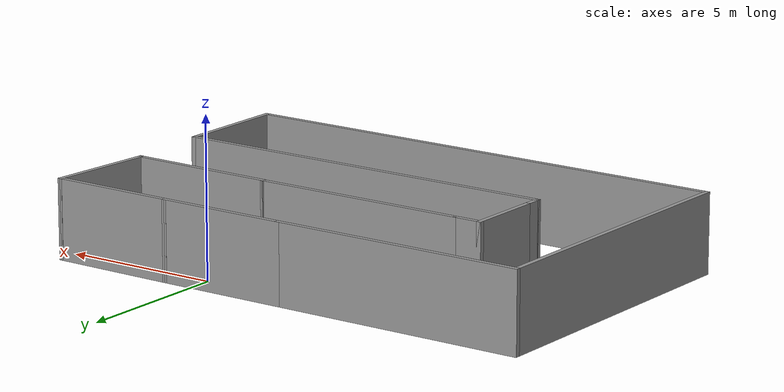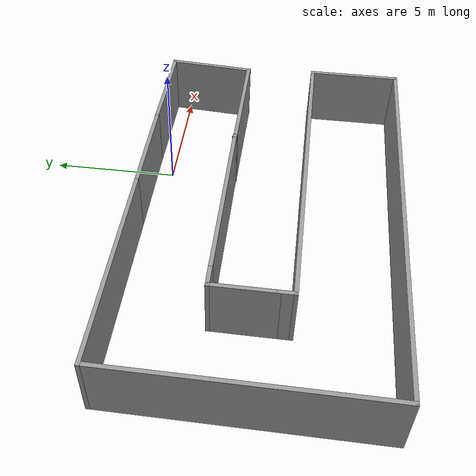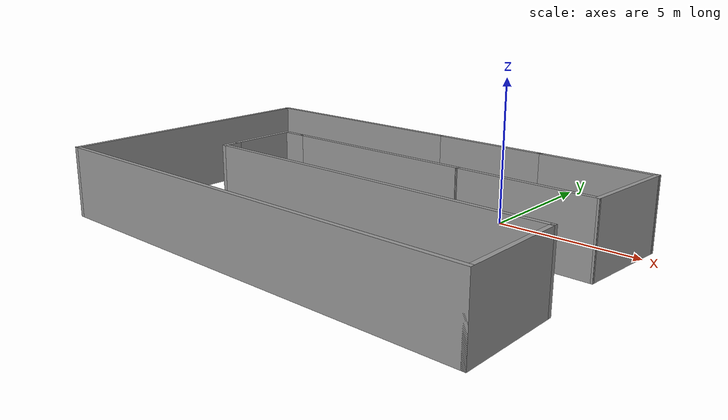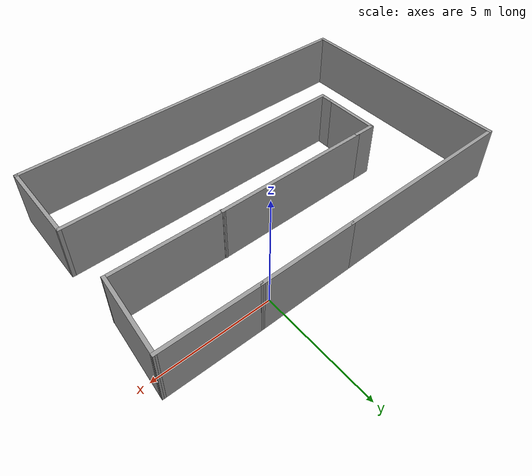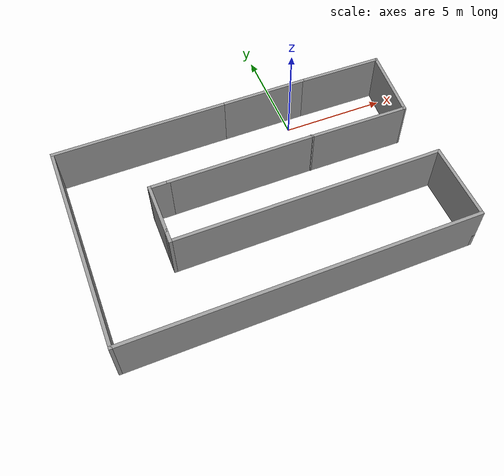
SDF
<?xml version='1.0'?>
<sdf version='1.7'>
  <model name='room1'>
    <pose>-3.15479 -4.20457 0 0 -0 0</pose>
    <link name='Wall_1'>
      <collision name='Wall_1_Collision'>
        <geometry>
          <box>
            <size>4.25 0.15 2.5</size>
          </box>
        </geometry>
        <pose>0 0 1.25 0 -0 0</pose>
      </collision>
      <visual name='Wall_1_Visual'>
        <pose>0 0 1.25 0 -0 0</pose>
        <geometry>
          <box>
            <size>4.25 0.15 2.5</size>
          </box>
        </geometry>
        <material>
          <script>
            <uri>file://media/materials/scripts/gazebo.material</uri>
            <name>Gazebo/Grey</name>
          </script>
          <ambient>1 1 1 1</ambient>
        </material>
        <meta>
          <layer>0</layer>
        </meta>
      </visual>
      <pose>2.06479 4.92457 0 0 -0 0</pose>
    </link>
    <link name='Wall_10'>
      <collision name='Wall_10_Collision'>
        <geometry>
          <box>
            <size>7 0.15 2.5</size>
          </box>
        </geometry>
        <pose>0 0 1.25 0 -0 0</pose>
      </collision>
      <visual name='Wall_10_Visual'>
        <pose>0 0 1.25 0 -0 0</pose>
        <geometry>
          <box>
            <size>7 0.15 2.5</size>
          </box>
        </geometry>
        <material>
          <script>
            <uri>file://media/materials/scripts/gazebo.material</uri>
            <name>Gazebo/Grey</name>
          </script>
          <ambient>1 1 1 1</ambient>
        </material>
        <meta>
          <layer>0</layer>
        </meta>
      </visual>
      <pose>-0.310209 1.57457 0 0 -0 3.14159</pose>
    </link>
    <link name='Wall_11'>
      <collision name='Wall_11_Collision'>
        <geometry>
          <box>
            <size>1 0.15 2.5</size>
          </box>
        </geometry>
        <pose>0 0 1.25 0 -0 0</pose>
      </collision>
      <visual name='Wall_11_Visual'>
        <pose>0 0 1.25 0 -0 0</pose>
        <geometry>
          <box>
            <size>1 0.15 2.5</size>
          </box>
        </geometry>
        <material>
          <script>
            <uri>file://media/materials/scripts/gazebo.material</uri>
            <name>Gazebo/Grey</name>
          </script>
          <ambient>1 1 1 1</ambient>
        </material>
        <meta>
          <layer>0</layer>
        </meta>
      </visual>
      <pose>-4.16021 1.57457 0 0 -0 3.14159</pose>
    </link>
    <link name='Wall_12'>
      <collision name='Wall_12_Collision'>
        <geometry>
          <box>
            <size>2.5 0.15 2.5</size>
          </box>
        </geometry>
        <pose>0 0 1.25 0 -0 0</pose>
      </collision>
      <visual name='Wall_12_Visual'>
        <pose>0 0 1.25 0 -0 0</pose>
        <geometry>
          <box>
            <size>2.5 0.15 2.5</size>
          </box>
        </geometry>
        <material>
          <script>
            <uri>file://media/materials/scripts/gazebo.material</uri>
            <name>Gazebo/Grey</name>
          </script>
          <ambient>1 1 1 1</ambient>
        </material>
        <meta>
          <layer>0</layer>
        </meta>
      </visual>
      <pose>-4.58521 0.399566 0 0 -0 -1.5708</pose>
    </link>
    <link name='Wall_14'>
      <collision name='Wall_14_Collision'>
        <geometry>
          <box>
            <size>8.25 0.15 2.5</size>
          </box>
        </geometry>
        <pose>0 0 1.25 0 -0 0</pose>
      </collision>
      <visual name='Wall_14_Visual'>
        <pose>0 0 1.25 0 -0 0</pose>
        <geometry>
          <box>
            <size>8.25 0.15 2.5</size>
          </box>
        </geometry>
        <material>
          <script>
            <uri>file://media/materials/scripts/gazebo.material</uri>
            <name>Gazebo/Grey</name>
          </script>
          <ambient>1 1 1 1</ambient>
        </material>
        <meta>
          <layer>0</layer>
        </meta>
      </visual>
      <pose>-4.03521 4.92457 0 0 -0 3.14159</pose>
    </link>
    <link name='Wall_16'>
      <collision name='Wall_16_Collision'>
        <geometry>
          <box>
            <size>10 0.15 2.5</size>
          </box>
        </geometry>
        <pose>0 0 1.25 0 -0 0</pose>
      </collision>
      <visual name='Wall_16_Visual'>
        <pose>0 0 1.25 0 -0 0</pose>
        <geometry>
          <box>
            <size>10 0.15 2.5</size>
          </box>
        </geometry>
        <material>
          <script>
            <uri>file://media/materials/scripts/gazebo.material</uri>
            <name>Gazebo/Grey</name>
          </script>
          <ambient>1 1 1 1</ambient>
        </material>
        <meta>
          <layer>0</layer>
        </meta>
      </visual>
      <pose>-8.08521 -0.000433 0 0 -0 -1.5708</pose>
    </link>
    <link name='Wall_18'>
      <collision name='Wall_18_Collision'>
        <geometry>
          <box>
            <size>16.25 0.15 2.5</size>
          </box>
        </geometry>
        <pose>0 0 1.25 0 -0 0</pose>
      </collision>
      <visual name='Wall_18_Visual'>
        <pose>0 0 1.25 0 -0 0</pose>
        <geometry>
          <box>
            <size>16.25 0.15 2.5</size>
          </box>
        </geometry>
        <material>
          <script>
            <uri>file://media/materials/scripts/gazebo.material</uri>
            <name>Gazebo/Grey</name>
          </script>
          <ambient>1 1 1 1</ambient>
        </material>
        <meta>
          <layer>0</layer>
        </meta>
      </visual>
      <pose>-0.035209 -4.92543 0 0 -0 0</pose>
    </link>
    <link name='Wall_19'>
      <collision name='Wall_19_Collision'>
        <geometry>
          <box>
            <size>3.75 0.15 2.5</size>
          </box>
        </geometry>
        <pose>0 0 1.25 0 -0 0</pose>
      </collision>
      <visual name='Wall_19_Visual'>
        <pose>0 0 1.25 0 -0 0</pose>
        <geometry>
          <box>
            <size>3.75 0.15 2.5</size>
          </box>
        </geometry>
        <material>
          <script>
            <uri>file://media/materials/scripts/gazebo.material</uri>
            <name>Gazebo/Grey</name>
          </script>
          <ambient>1 1 1 1</ambient>
        </material>
        <meta>
          <layer>0</layer>
        </meta>
      </visual>
      <pose>8.01479 -3.12543 0 0 -0 1.5708</pose>
    </link>
    <link name='Wall_20'>
      <collision name='Wall_20_Collision'>
        <geometry>
          <box>
            <size>12.75 0.15 2.5</size>
          </box>
        </geometry>
        <pose>0 0 1.25 0 -0 0</pose>
      </collision>
      <visual name='Wall_20_Visual'>
        <pose>0 0 1.25 0 -0 0</pose>
        <geometry>
          <box>
            <size>12.75 0.15 2.5</size>
          </box>
        </geometry>
        <material>
          <script>
            <uri>file://media/materials/scripts/gazebo.material</uri>
            <name>Gazebo/Grey</name>
          </script>
          <ambient>1 1 1 1</ambient>
        </material>
        <meta>
          <layer>0</layer>
        </meta>
      </visual>
      <pose>1.71479 -1.32543 0 0 -0 3.14159</pose>
    </link>
    <link name='Wall_21'>
      <collision name='Wall_21_Collision'>
        <geometry>
          <box>
            <size>0.7 0.15 2.5</size>
          </box>
        </geometry>
        <pose>0 0 1.25 0 -0 0</pose>
      </collision>
      <visual name='Wall_21_Visual'>
        <pose>0 0 1.25 0 -0 0</pose>
        <geometry>
          <box>
            <size>0.7 0.15 2.5</size>
          </box>
        </geometry>
        <material>
          <script>
            <uri>file://media/materials/scripts/gazebo.material</uri>
            <name>Gazebo/Grey</name>
          </script>
          <ambient>1 1 1 1</ambient>
        </material>
        <meta>
          <layer>0</layer>
        </meta>
      </visual>
      <pose>-4.58521 -1.05043 0 0 -0 1.5708</pose>
    </link>
    <link name='Wall_24'>
      <collision name='Wall_24_Collision'>
        <geometry>
          <box>
            <size>3.51951 0.15 2.5</size>
          </box>
        </geometry>
        <pose>0 0 1.25 0 -0 0</pose>
      </collision>
      <visual name='Wall_24_Visual'>
        <pose>0 0 1.25 0 -0 0</pose>
        <geometry>
          <box>
            <size>3.51951 0.15 2.5</size>
          </box>
        </geometry>
        <material>
          <script>
            <uri>file://media/materials/scripts/gazebo.material</uri>
            <name>Gazebo/Grey</name>
          </script>
          <ambient>1 1 1 1</ambient>
        </material>
        <meta>
          <layer>0</layer>
        </meta>
      </visual>
      <pose>7.95329 3.19857 0 0 -0 1.49564</pose>
    </link>
    <link name='Wall_3'>
      <collision name='Wall_3_Collision'>
        <geometry>
          <box>
            <size>4.1156 0.15 2.5</size>
          </box>
        </geometry>
        <pose>0 0 1.25 0 -0 0</pose>
      </collision>
      <visual name='Wall_3_Visual'>
        <pose>0 0 1.25 0 -0 0</pose>
        <geometry>
          <box>
            <size>4.1156 0.15 2.5</size>
          </box>
        </geometry>
        <material>
          <script>
            <uri>file://media/materials/scripts/gazebo.material</uri>
            <name>Gazebo/Grey</name>
          </script>
          <ambient>1 1 1 1</ambient>
        </material>
        <meta>
          <layer>0</layer>
        </meta>
      </visual>
      <pose>6.09729 4.90157 0 0 -0 -0.011601</pose>
    </link>
    <link name='Wall_7'>
      <collision name='Wall_7_Collision'>
        <geometry>
          <box>
            <size>4.79323 0.15 2.5</size>
          </box>
        </geometry>
        <pose>0 0 1.25 0 -0 0</pose>
      </collision>
      <visual name='Wall_7_Visual'>
        <pose>0 0 1.25 0 -0 0</pose>
        <geometry>
          <box>
            <size>4.79323 0.15 2.5</size>
          </box>
        </geometry>
        <material>
          <script>
            <uri>file://media/materials/scripts/gazebo.material</uri>
            <name>Gazebo/Grey</name>
          </script>
          <ambient>1 1 1 1</ambient>
        </material>
        <meta>
          <layer>0</layer>
        </meta>
      </visual>
      <pose>5.50529 1.54157 0 0 -0 3.13169</pose>
    </link>
    <link name='Wall_8'>
      <collision name='Wall_8_Collision'>
        <geometry>
          <box>
            <size>0.17508 0.15 2.5</size>
          </box>
        </geometry>
        <pose>0 0 1.25 0 -0 0</pose>
      </collision>
      <visual name='Wall_8_Visual'>
        <pose>0 0 1.25 0 -0 0</pose>
        <geometry>
          <box>
            <size>0.17508 0.15 2.5</size>
          </box>
        </geometry>
        <material>
          <script>
            <uri>file://media/materials/scripts/gazebo.material</uri>
            <name>Gazebo/Grey</name>
          </script>
          <ambient>1 1 1 1</ambient>
        </material>
        <meta>
          <layer>0</layer>
        </meta>
      </visual>
      <pose>3.12629 1.56957 0 0 -0 2.73147</pose>
    </link>
    <static>1</static>
  </model>
</sdf>
